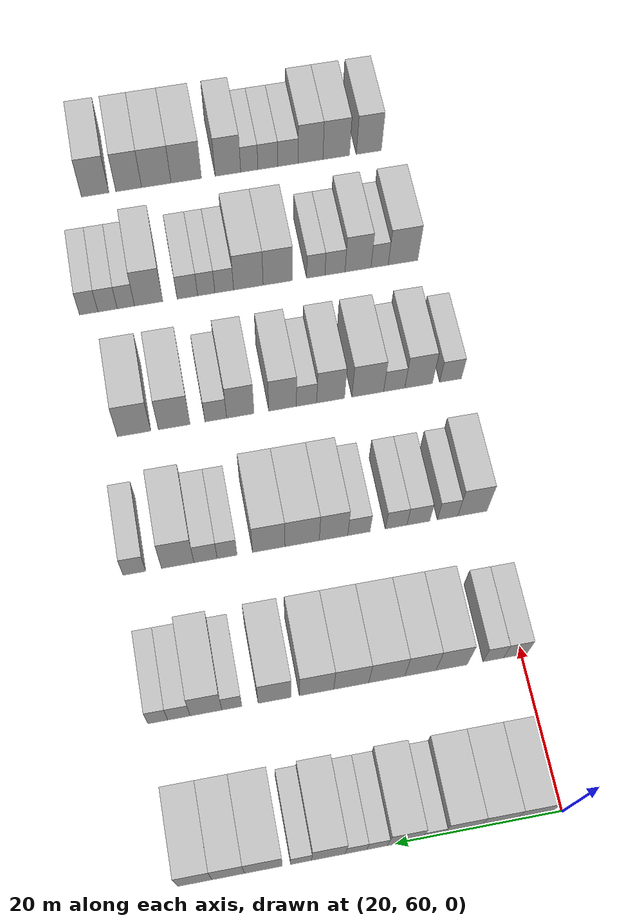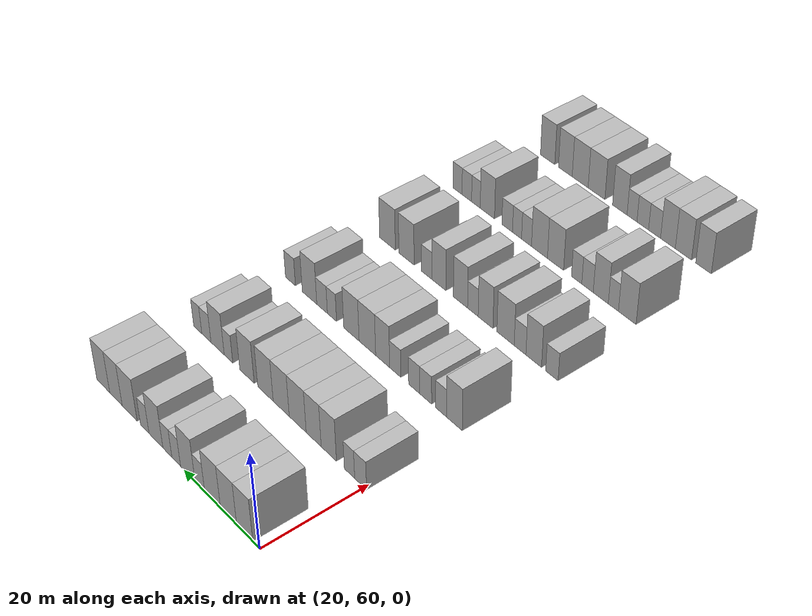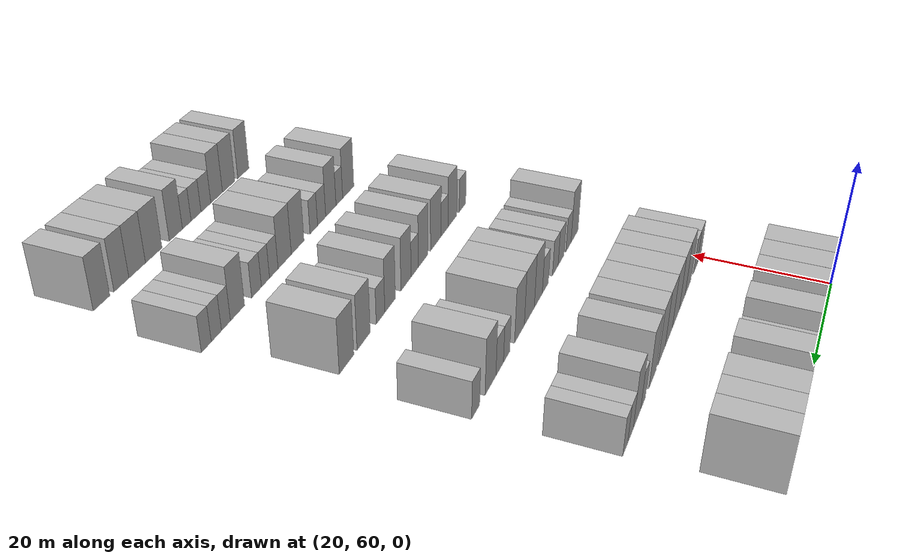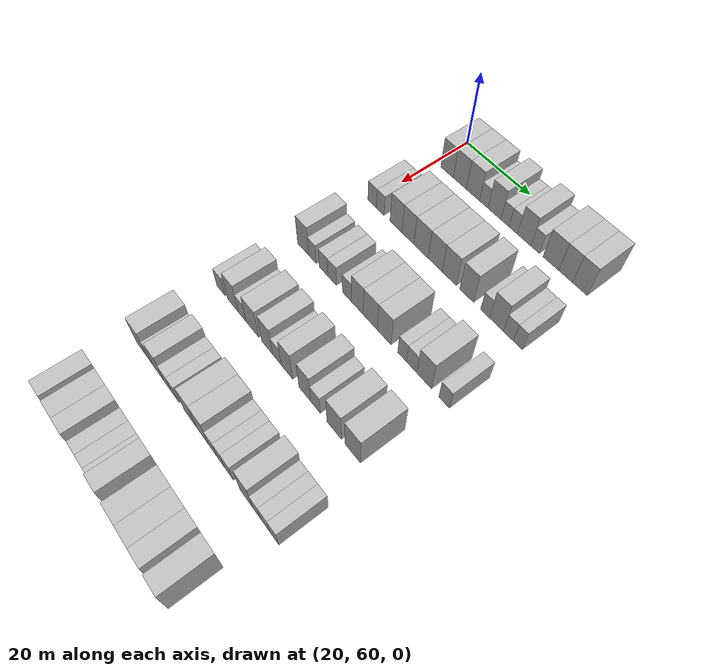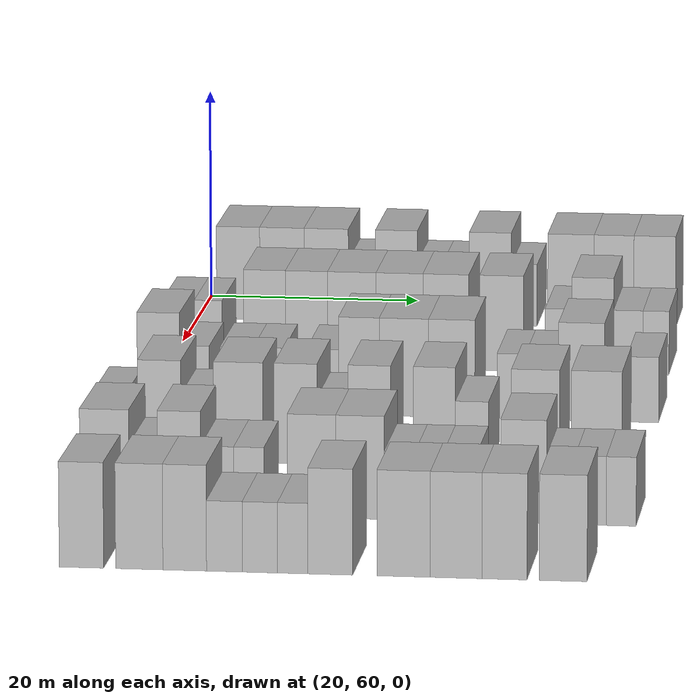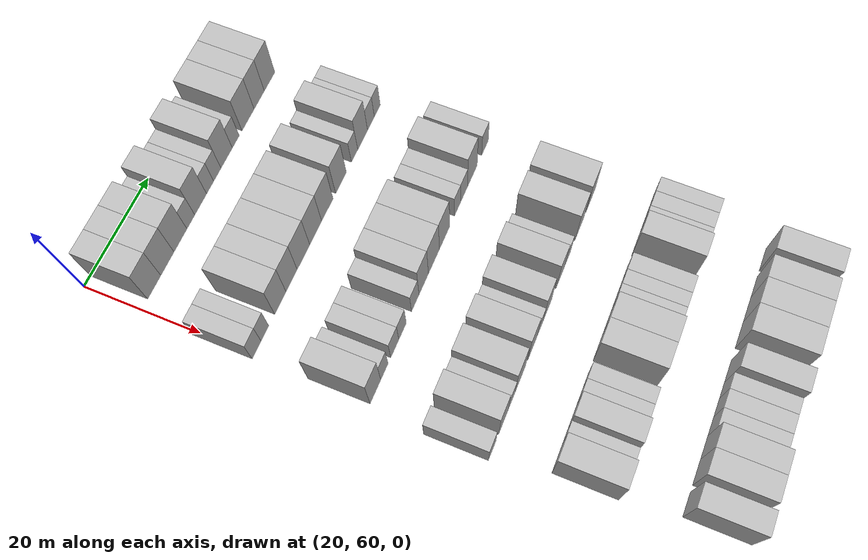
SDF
<sdf version="1.6">
 <world name="default">
  <model name="building_106">
   <static>1</static>
   <pose>25.0000 63.9038 0 0.000000 0.000000 0.000000</pose>
   <link name="link">
    <pose>0 0 4.50 0 0 0</pose>
    <collision name="collision"><geometry><box><size>10.0000 4.1466 9.0000</size></box></geometry></collision>
    <visual name="visual">
     <cast_shadows>0</cast_shadows>
     <geometry><box><size>10.0000 4.1466 9.0000</size></box></geometry>
     <material>
      <script>
       <uri>model://HANNAS_wall/materials/scripts</uri>
       <uri>model://HANNAS_wall/materials/textures</uri>
       <name>vrc/HANNAS_wall</name>
      </script>
     </material>
    </visual>
   </link>
  </model>
  <model name="building_107">
   <static>1</static>
   <pose>25.0000 68.0973 0 0.000000 0.000000 0.000000</pose>
   <link name="link">
    <pose>0 0 4.50 0 0 0</pose>
    <collision name="collision"><geometry><box><size>10.0000 4.2405 9.0000</size></box></geometry></collision>
    <visual name="visual">
     <cast_shadows>0</cast_shadows>
     <geometry><box><size>10.0000 4.2405 9.0000</size></box></geometry>
     <material>
      <script>
       <uri>model://HANNAS_wall/materials/scripts</uri>
       <uri>model://HANNAS_wall/materials/textures</uri>
       <name>vrc/HANNAS_wall</name>
      </script>
     </material>
    </visual>
   </link>
  </model>
  <model name="building_108">
   <static>1</static>
   <pose>25.0000 72.3315 0 0.000000 0.000000 0.000000</pose>
   <link name="link">
    <pose>0 0 4.50 0 0 0</pose>
    <collision name="collision"><geometry><box><size>10.0000 4.2278 9.0000</size></box></geometry></collision>
    <visual name="visual">
     <cast_shadows>0</cast_shadows>
     <geometry><box><size>10.0000 4.2278 9.0000</size></box></geometry>
     <material>
      <script>
       <uri>model://HANNAS_wall/materials/scripts</uri>
       <uri>model://HANNAS_wall/materials/textures</uri>
       <name>vrc/HANNAS_wall</name>
      </script>
     </material>
    </visual>
   </link>
  </model>
  <model name="building_109">
   <static>1</static>
   <pose>25.0000 75.7464 0 0.000000 0.000000 0.000000</pose>
   <link name="link">
    <pose>0 0 3.00 0 0 0</pose>
    <collision name="collision"><geometry><box><size>10.0000 2.6019 6.0000</size></box></geometry></collision>
    <visual name="visual">
     <cast_shadows>0</cast_shadows>
     <geometry><box><size>10.0000 2.6019 6.0000</size></box></geometry>
     <material>
      <script>
       <uri>model://HANNAS_wall/materials/scripts</uri>
       <uri>model://HANNAS_wall/materials/textures</uri>
       <name>vrc/HANNAS_wall</name>
      </script>
     </material>
    </visual>
   </link>
  </model>
  <model name="building_110">
   <static>1</static>
   <pose>25.0000 79.0445 0 0.000000 0.000000 0.000000</pose>
   <link name="link">
    <pose>0 0 4.50 0 0 0</pose>
    <collision name="collision"><geometry><box><size>10.0000 3.9943 9.0000</size></box></geometry></collision>
    <visual name="visual">
     <cast_shadows>0</cast_shadows>
     <geometry><box><size>10.0000 3.9943 9.0000</size></box></geometry>
     <material>
      <script>
       <uri>model://HANNAS_wall/materials/scripts</uri>
       <uri>model://HANNAS_wall/materials/textures</uri>
       <name>vrc/HANNAS_wall</name>
      </script>
     </material>
    </visual>
   </link>
  </model>
  <model name="building_111">
   <static>1</static>
   <pose>25.0000 82.2588 0 0.000000 0.000000 0.000000</pose>
   <link name="link">
    <pose>0 0 3.00 0 0 0</pose>
    <collision name="collision"><geometry><box><size>10.0000 2.4343 6.0000</size></box></geometry></collision>
    <visual name="visual">
     <cast_shadows>0</cast_shadows>
     <geometry><box><size>10.0000 2.4343 6.0000</size></box></geometry>
     <material>
      <script>
       <uri>model://HANNAS_wall/materials/scripts</uri>
       <uri>model://HANNAS_wall/materials/textures</uri>
       <name>vrc/HANNAS_wall</name>
      </script>
     </material>
    </visual>
   </link>
  </model>
  <model name="building_112">
   <static>1</static>
   <pose>25.0000 84.7339 0 0.000000 0.000000 0.000000</pose>
   <link name="link">
    <pose>0 0 3.00 0 0 0</pose>
    <collision name="collision"><geometry><box><size>10.0000 2.5159 6.0000</size></box></geometry></collision>
    <visual name="visual">
     <cast_shadows>0</cast_shadows>
     <geometry><box><size>10.0000 2.5159 6.0000</size></box></geometry>
     <material>
      <script>
       <uri>model://HANNAS_wall/materials/scripts</uri>
       <uri>model://HANNAS_wall/materials/textures</uri>
       <name>vrc/HANNAS_wall</name>
      </script>
     </material>
    </visual>
   </link>
  </model>
  <model name="building_113">
   <static>1</static>
   <pose>25.0000 87.9818 0 0.000000 0.000000 0.000000</pose>
   <link name="link">
    <pose>0 0 4.50 0 0 0</pose>
    <collision name="collision"><geometry><box><size>10.0000 3.9801 9.0000</size></box></geometry></collision>
    <visual name="visual">
     <cast_shadows>0</cast_shadows>
     <geometry><box><size>10.0000 3.9801 9.0000</size></box></geometry>
     <material>
      <script>
       <uri>model://HANNAS_wall/materials/scripts</uri>
       <uri>model://HANNAS_wall/materials/textures</uri>
       <name>vrc/HANNAS_wall</name>
      </script>
     </material>
    </visual>
   </link>
  </model>
  <model name="building_114">
   <static>1</static>
   <pose>25.0000 91.2008 0 0.000000 0.000000 0.000000</pose>
   <link name="link">
    <pose>0 0 3.00 0 0 0</pose>
    <collision name="collision"><geometry><box><size>10.0000 2.4577 6.0000</size></box></geometry></collision>
    <visual name="visual">
     <cast_shadows>0</cast_shadows>
     <geometry><box><size>10.0000 2.4577 6.0000</size></box></geometry>
     <material>
      <script>
       <uri>model://HANNAS_wall/materials/scripts</uri>
       <uri>model://HANNAS_wall/materials/textures</uri>
       <name>vrc/HANNAS_wall</name>
      </script>
     </material>
    </visual>
   </link>
  </model>
  <model name="building_115">
   <static>1</static>
   <pose>25.0000 95.6317 0 0.000000 0.000000 0.000000</pose>
   <link name="link">
    <pose>0 0 4.50 0 0 0</pose>
    <collision name="collision"><geometry><box><size>10.0000 4.4041 9.0000</size></box></geometry></collision>
    <visual name="visual">
     <cast_shadows>0</cast_shadows>
     <geometry><box><size>10.0000 4.4041 9.0000</size></box></geometry>
     <material>
      <script>
       <uri>model://HANNAS_wall/materials/scripts</uri>
       <uri>model://HANNAS_wall/materials/textures</uri>
       <name>vrc/HANNAS_wall</name>
      </script>
     </material>
    </visual>
   </link>
  </model>
  <model name="building_116">
   <static>1</static>
   <pose>25.0000 99.7130 0 0.000000 0.000000 0.000000</pose>
   <link name="link">
    <pose>0 0 4.50 0 0 0</pose>
    <collision name="collision"><geometry><box><size>10.0000 3.7586 9.0000</size></box></geometry></collision>
    <visual name="visual">
     <cast_shadows>0</cast_shadows>
     <geometry><box><size>10.0000 3.7586 9.0000</size></box></geometry>
     <material>
      <script>
       <uri>model://HANNAS_wall/materials/scripts</uri>
       <uri>model://HANNAS_wall/materials/textures</uri>
       <name>vrc/HANNAS_wall</name>
      </script>
     </material>
    </visual>
   </link>
  </model>
  <model name="building_117">
   <static>1</static>
   <pose>25.0000 103.5702 0 0.000000 0.000000 0.000000</pose>
   <link name="link">
    <pose>0 0 4.50 0 0 0</pose>
    <collision name="collision"><geometry><box><size>10.0000 3.9557 9.0000</size></box></geometry></collision>
    <visual name="visual">
     <cast_shadows>0</cast_shadows>
     <geometry><box><size>10.0000 3.9557 9.0000</size></box></geometry>
     <material>
      <script>
       <uri>model://HANNAS_wall/materials/scripts</uri>
       <uri>model://HANNAS_wall/materials/textures</uri>
       <name>vrc/HANNAS_wall</name>
      </script>
     </material>
    </visual>
   </link>
  </model>
  <model name="building_271">
   <static>1</static>
   <pose>44.0000 60.8324 0 0.000000 0.000000 0.000000</pose>
   <link name="link">
    <pose>0 0 3.00 0 0 0</pose>
    <collision name="collision"><geometry><box><size>10.0000 2.9647 6.0000</size></box></geometry></collision>
    <visual name="visual">
     <cast_shadows>0</cast_shadows>
     <geometry><box><size>10.0000 2.9647 6.0000</size></box></geometry>
     <material>
      <script>
       <uri>model://HANNAS_wall/materials/scripts</uri>
       <uri>model://HANNAS_wall/materials/textures</uri>
       <name>vrc/HANNAS_wall</name>
      </script>
     </material>
    </visual>
   </link>
  </model>
  <model name="building_272">
   <static>1</static>
   <pose>44.0000 63.6088 0 0.000000 0.000000 0.000000</pose>
   <link name="link">
    <pose>0 0 3.00 0 0 0</pose>
    <collision name="collision"><geometry><box><size>10.0000 2.5880 6.0000</size></box></geometry></collision>
    <visual name="visual">
     <cast_shadows>0</cast_shadows>
     <geometry><box><size>10.0000 2.5880 6.0000</size></box></geometry>
     <material>
      <script>
       <uri>model://HANNAS_wall/materials/scripts</uri>
       <uri>model://HANNAS_wall/materials/textures</uri>
       <name>vrc/HANNAS_wall</name>
      </script>
     </material>
    </visual>
   </link>
  </model>
  <model name="building_273">
   <static>1</static>
   <pose>44.0000 68.8631 0 0.000000 0.000000 0.000000</pose>
   <link name="link">
    <pose>0 0 4.50 0 0 0</pose>
    <collision name="collision"><geometry><box><size>10.0000 3.9206 9.0000</size></box></geometry></collision>
    <visual name="visual">
     <cast_shadows>0</cast_shadows>
     <geometry><box><size>10.0000 3.9206 9.0000</size></box></geometry>
     <material>
      <script>
       <uri>model://HANNAS_wall/materials/scripts</uri>
       <uri>model://HANNAS_wall/materials/textures</uri>
       <name>vrc/HANNAS_wall</name>
      </script>
     </material>
    </visual>
   </link>
  </model>
  <model name="building_274">
   <static>1</static>
   <pose>44.0000 72.7840 0 0.000000 0.000000 0.000000</pose>
   <link name="link">
    <pose>0 0 4.50 0 0 0</pose>
    <collision name="collision"><geometry><box><size>10.0000 3.9212 9.0000</size></box></geometry></collision>
    <visual name="visual">
     <cast_shadows>0</cast_shadows>
     <geometry><box><size>10.0000 3.9212 9.0000</size></box></geometry>
     <material>
      <script>
       <uri>model://HANNAS_wall/materials/scripts</uri>
       <uri>model://HANNAS_wall/materials/textures</uri>
       <name>vrc/HANNAS_wall</name>
      </script>
     </material>
    </visual>
   </link>
  </model>
  <model name="building_275">
   <static>1</static>
   <pose>44.0000 76.9943 0 0.000000 0.000000 0.000000</pose>
   <link name="link">
    <pose>0 0 4.50 0 0 0</pose>
    <collision name="collision"><geometry><box><size>10.0000 4.4993 9.0000</size></box></geometry></collision>
    <visual name="visual">
     <cast_shadows>0</cast_shadows>
     <geometry><box><size>10.0000 4.4993 9.0000</size></box></geometry>
     <material>
      <script>
       <uri>model://HANNAS_wall/materials/scripts</uri>
       <uri>model://HANNAS_wall/materials/textures</uri>
       <name>vrc/HANNAS_wall</name>
      </script>
     </material>
    </visual>
   </link>
  </model>
  <model name="building_276">
   <static>1</static>
   <pose>44.0000 81.4187 0 0.000000 0.000000 0.000000</pose>
   <link name="link">
    <pose>0 0 4.50 0 0 0</pose>
    <collision name="collision"><geometry><box><size>10.0000 4.3495 9.0000</size></box></geometry></collision>
    <visual name="visual">
     <cast_shadows>0</cast_shadows>
     <geometry><box><size>10.0000 4.3495 9.0000</size></box></geometry>
     <material>
      <script>
       <uri>model://HANNAS_wall/materials/scripts</uri>
       <uri>model://HANNAS_wall/materials/textures</uri>
       <name>vrc/HANNAS_wall</name>
      </script>
     </material>
    </visual>
   </link>
  </model>
  <model name="building_277">
   <static>1</static>
   <pose>44.0000 85.7182 0 0.000000 0.000000 0.000000</pose>
   <link name="link">
    <pose>0 0 4.50 0 0 0</pose>
    <collision name="collision"><geometry><box><size>10.0000 4.2495 9.0000</size></box></geometry></collision>
    <visual name="visual">
     <cast_shadows>0</cast_shadows>
     <geometry><box><size>10.0000 4.2495 9.0000</size></box></geometry>
     <material>
      <script>
       <uri>model://HANNAS_wall/materials/scripts</uri>
       <uri>model://HANNAS_wall/materials/textures</uri>
       <name>vrc/HANNAS_wall</name>
      </script>
     </material>
    </visual>
   </link>
  </model>
  <model name="building_278">
   <static>1</static>
   <pose>44.0000 90.8775 0 0.000000 0.000000 0.000000</pose>
   <link name="link">
    <pose>0 0 4.50 0 0 0</pose>
    <collision name="collision"><geometry><box><size>10.0000 4.0691 9.0000</size></box></geometry></collision>
    <visual name="visual">
     <cast_shadows>0</cast_shadows>
     <geometry><box><size>10.0000 4.0691 9.0000</size></box></geometry>
     <material>
      <script>
       <uri>model://HANNAS_wall/materials/scripts</uri>
       <uri>model://HANNAS_wall/materials/textures</uri>
       <name>vrc/HANNAS_wall</name>
      </script>
     </material>
    </visual>
   </link>
  </model>
  <model name="building_279">
   <static>1</static>
   <pose>44.0000 96.1391 0 0.000000 0.000000 0.000000</pose>
   <link name="link">
    <pose>0 0 3.00 0 0 0</pose>
    <collision name="collision"><geometry><box><size>10.0000 2.4541 6.0000</size></box></geometry></collision>
    <visual name="visual">
     <cast_shadows>0</cast_shadows>
     <geometry><box><size>10.0000 2.4541 6.0000</size></box></geometry>
     <material>
      <script>
       <uri>model://HANNAS_wall/materials/scripts</uri>
       <uri>model://HANNAS_wall/materials/textures</uri>
       <name>vrc/HANNAS_wall</name>
      </script>
     </material>
    </visual>
   </link>
  </model>
  <model name="building_280">
   <static>1</static>
   <pose>44.0000 99.3023 0 0.000000 0.000000 0.000000</pose>
   <link name="link">
    <pose>0 0 4.50 0 0 0</pose>
    <collision name="collision"><geometry><box><size>10.0000 3.8723 9.0000</size></box></geometry></collision>
    <visual name="visual">
     <cast_shadows>0</cast_shadows>
     <geometry><box><size>10.0000 3.8723 9.0000</size></box></geometry>
     <material>
      <script>
       <uri>model://HANNAS_wall/materials/scripts</uri>
       <uri>model://HANNAS_wall/materials/textures</uri>
       <name>vrc/HANNAS_wall</name>
      </script>
     </material>
    </visual>
   </link>
  </model>
  <model name="building_281">
   <static>1</static>
   <pose>44.0000 102.5979 0 0.000000 0.000000 0.000000</pose>
   <link name="link">
    <pose>0 0 3.00 0 0 0</pose>
    <collision name="collision"><geometry><box><size>10.0000 2.7188 6.0000</size></box></geometry></collision>
    <visual name="visual">
     <cast_shadows>0</cast_shadows>
     <geometry><box><size>10.0000 2.7188 6.0000</size></box></geometry>
     <material>
      <script>
       <uri>model://HANNAS_wall/materials/scripts</uri>
       <uri>model://HANNAS_wall/materials/textures</uri>
       <name>vrc/HANNAS_wall</name>
      </script>
     </material>
    </visual>
   </link>
  </model>
  <model name="building_282">
   <static>1</static>
   <pose>44.0000 105.1617 0 0.000000 0.000000 0.000000</pose>
   <link name="link">
    <pose>0 0 3.00 0 0 0</pose>
    <collision name="collision"><geometry><box><size>10.0000 2.4087 6.0000</size></box></geometry></collision>
    <visual name="visual">
     <cast_shadows>0</cast_shadows>
     <geometry><box><size>10.0000 2.4087 6.0000</size></box></geometry>
     <material>
      <script>
       <uri>model://HANNAS_wall/materials/scripts</uri>
       <uri>model://HANNAS_wall/materials/textures</uri>
       <name>vrc/HANNAS_wall</name>
      </script>
     </material>
    </visual>
   </link>
  </model>
  <model name="building_451">
   <static>1</static>
   <pose>63.0000 61.6521 0 0.000000 0.000000 0.000000</pose>
   <link name="link">
    <pose>0 0 4.50 0 0 0</pose>
    <collision name="collision"><geometry><box><size>10.0000 3.8579 9.0000</size></box></geometry></collision>
    <visual name="visual">
     <cast_shadows>0</cast_shadows>
     <geometry><box><size>10.0000 3.8579 9.0000</size></box></geometry>
     <material>
      <script>
       <uri>model://HANNAS_wall/materials/scripts</uri>
       <uri>model://HANNAS_wall/materials/textures</uri>
       <name>vrc/HANNAS_wall</name>
      </script>
     </material>
    </visual>
   </link>
  </model>
  <model name="building_452">
   <static>1</static>
   <pose>63.0000 64.9210 0 0.000000 0.000000 0.000000</pose>
   <link name="link">
    <pose>0 0 3.00 0 0 0</pose>
    <collision name="collision"><geometry><box><size>10.0000 2.6800 6.0000</size></box></geometry></collision>
    <visual name="visual">
     <cast_shadows>0</cast_shadows>
     <geometry><box><size>10.0000 2.6800 6.0000</size></box></geometry>
     <material>
      <script>
       <uri>model://HANNAS_wall/materials/scripts</uri>
       <uri>model://HANNAS_wall/materials/textures</uri>
       <name>vrc/HANNAS_wall</name>
      </script>
     </material>
    </visual>
   </link>
  </model>
  <model name="building_453">
   <static>1</static>
   <pose>63.0000 68.7595 0 0.000000 0.000000 0.000000</pose>
   <link name="link">
    <pose>0 0 3.00 0 0 0</pose>
    <collision name="collision"><geometry><box><size>10.0000 2.9969 6.0000</size></box></geometry></collision>
    <visual name="visual">
     <cast_shadows>0</cast_shadows>
     <geometry><box><size>10.0000 2.9969 6.0000</size></box></geometry>
     <material>
      <script>
       <uri>model://HANNAS_wall/materials/scripts</uri>
       <uri>model://HANNAS_wall/materials/textures</uri>
       <name>vrc/HANNAS_wall</name>
      </script>
     </material>
    </visual>
   </link>
  </model>
  <model name="building_454">
   <static>1</static>
   <pose>63.0000 71.6712 0 0.000000 0.000000 0.000000</pose>
   <link name="link">
    <pose>0 0 3.00 0 0 0</pose>
    <collision name="collision"><geometry><box><size>10.0000 2.8265 6.0000</size></box></geometry></collision>
    <visual name="visual">
     <cast_shadows>0</cast_shadows>
     <geometry><box><size>10.0000 2.8265 6.0000</size></box></geometry>
     <material>
      <script>
       <uri>model://HANNAS_wall/materials/scripts</uri>
       <uri>model://HANNAS_wall/materials/textures</uri>
       <name>vrc/HANNAS_wall</name>
      </script>
     </material>
    </visual>
   </link>
  </model>
  <model name="building_455">
   <static>1</static>
   <pose>63.0000 76.5376 0 0.000000 0.000000 0.000000</pose>
   <link name="link">
    <pose>0 0 3.00 0 0 0</pose>
    <collision name="collision"><geometry><box><size>10.0000 2.9063 6.0000</size></box></geometry></collision>
    <visual name="visual">
     <cast_shadows>0</cast_shadows>
     <geometry><box><size>10.0000 2.9063 6.0000</size></box></geometry>
     <material>
      <script>
       <uri>model://HANNAS_wall/materials/scripts</uri>
       <uri>model://HANNAS_wall/materials/textures</uri>
       <name>vrc/HANNAS_wall</name>
      </script>
     </material>
    </visual>
   </link>
  </model>
  <model name="building_456">
   <static>1</static>
   <pose>63.0000 79.8390 0 0.000000 0.000000 0.000000</pose>
   <link name="link">
    <pose>0 0 4.50 0 0 0</pose>
    <collision name="collision"><geometry><box><size>10.0000 3.6966 9.0000</size></box></geometry></collision>
    <visual name="visual">
     <cast_shadows>0</cast_shadows>
     <geometry><box><size>10.0000 3.6966 9.0000</size></box></geometry>
     <material>
      <script>
       <uri>model://HANNAS_wall/materials/scripts</uri>
       <uri>model://HANNAS_wall/materials/textures</uri>
       <name>vrc/HANNAS_wall</name>
      </script>
     </material>
    </visual>
   </link>
  </model>
  <model name="building_457">
   <static>1</static>
   <pose>63.0000 83.9085 0 0.000000 0.000000 0.000000</pose>
   <link name="link">
    <pose>0 0 4.50 0 0 0</pose>
    <collision name="collision"><geometry><box><size>10.0000 4.4424 9.0000</size></box></geometry></collision>
    <visual name="visual">
     <cast_shadows>0</cast_shadows>
     <geometry><box><size>10.0000 4.4424 9.0000</size></box></geometry>
     <material>
      <script>
       <uri>model://HANNAS_wall/materials/scripts</uri>
       <uri>model://HANNAS_wall/materials/textures</uri>
       <name>vrc/HANNAS_wall</name>
      </script>
     </material>
    </visual>
   </link>
  </model>
  <model name="building_458">
   <static>1</static>
   <pose>63.0000 88.2205 0 0.000000 0.000000 0.000000</pose>
   <link name="link">
    <pose>0 0 4.50 0 0 0</pose>
    <collision name="collision"><geometry><box><size>10.0000 4.1816 9.0000</size></box></geometry></collision>
    <visual name="visual">
     <cast_shadows>0</cast_shadows>
     <geometry><box><size>10.0000 4.1816 9.0000</size></box></geometry>
     <material>
      <script>
       <uri>model://HANNAS_wall/materials/scripts</uri>
       <uri>model://HANNAS_wall/materials/textures</uri>
       <name>vrc/HANNAS_wall</name>
      </script>
     </material>
    </visual>
   </link>
  </model>
  <model name="building_459">
   <static>1</static>
   <pose>63.0000 93.5876 0 0.000000 0.000000 0.000000</pose>
   <link name="link">
    <pose>0 0 3.00 0 0 0</pose>
    <collision name="collision"><geometry><box><size>10.0000 2.5525 6.0000</size></box></geometry></collision>
    <visual name="visual">
     <cast_shadows>0</cast_shadows>
     <geometry><box><size>10.0000 2.5525 6.0000</size></box></geometry>
     <material>
      <script>
       <uri>model://HANNAS_wall/materials/scripts</uri>
       <uri>model://HANNAS_wall/materials/textures</uri>
       <name>vrc/HANNAS_wall</name>
      </script>
     </material>
    </visual>
   </link>
  </model>
  <model name="building_460">
   <static>1</static>
   <pose>63.0000 96.3551 0 0.000000 0.000000 0.000000</pose>
   <link name="link">
    <pose>0 0 3.00 0 0 0</pose>
    <collision name="collision"><geometry><box><size>10.0000 2.9826 6.0000</size></box></geometry></collision>
    <visual name="visual">
     <cast_shadows>0</cast_shadows>
     <geometry><box><size>10.0000 2.9826 6.0000</size></box></geometry>
     <material>
      <script>
       <uri>model://HANNAS_wall/materials/scripts</uri>
       <uri>model://HANNAS_wall/materials/textures</uri>
       <name>vrc/HANNAS_wall</name>
      </script>
     </material>
    </visual>
   </link>
  </model>
  <model name="building_461">
   <static>1</static>
   <pose>63.0000 99.9138 0 0.000000 0.000000 0.000000</pose>
   <link name="link">
    <pose>0 0 4.50 0 0 0</pose>
    <collision name="collision"><geometry><box><size>10.0000 4.1348 9.0000</size></box></geometry></collision>
    <visual name="visual">
     <cast_shadows>0</cast_shadows>
     <geometry><box><size>10.0000 4.1348 9.0000</size></box></geometry>
     <material>
      <script>
       <uri>model://HANNAS_wall/materials/scripts</uri>
       <uri>model://HANNAS_wall/materials/textures</uri>
       <name>vrc/HANNAS_wall</name>
      </script>
     </material>
    </visual>
   </link>
  </model>
  <model name="building_462">
   <static>1</static>
   <pose>63.0000 105.4234 0 0.000000 0.000000 0.000000</pose>
   <link name="link">
    <pose>0 0 3.00 0 0 0</pose>
    <collision name="collision"><geometry><box><size>10.0000 2.8844 6.0000</size></box></geometry></collision>
    <visual name="visual">
     <cast_shadows>0</cast_shadows>
     <geometry><box><size>10.0000 2.8844 6.0000</size></box></geometry>
     <material>
      <script>
       <uri>model://HANNAS_wall/materials/scripts</uri>
       <uri>model://HANNAS_wall/materials/textures</uri>
       <name>vrc/HANNAS_wall</name>
      </script>
     </material>
    </visual>
   </link>
  </model>
  <model name="building_602">
   <static>1</static>
   <pose>82.0000 60.0357 0 0.000000 0.000000 0.000000</pose>
   <link name="link">
    <pose>0 0 3.00 0 0 0</pose>
    <collision name="collision"><geometry><box><size>10.0000 2.9883 6.0000</size></box></geometry></collision>
    <visual name="visual">
     <cast_shadows>0</cast_shadows>
     <geometry><box><size>10.0000 2.9883 6.0000</size></box></geometry>
     <material>
      <script>
       <uri>model://HANNAS_wall/materials/scripts</uri>
       <uri>model://HANNAS_wall/materials/textures</uri>
       <name>vrc/HANNAS_wall</name>
      </script>
     </material>
    </visual>
   </link>
  </model>
  <model name="building_603">
   <static>1</static>
   <pose>82.0000 64.4304 0 0.000000 0.000000 0.000000</pose>
   <link name="link">
    <pose>0 0 4.50 0 0 0</pose>
    <collision name="collision"><geometry><box><size>10.0000 3.8011 9.0000</size></box></geometry></collision>
    <visual name="visual">
     <cast_shadows>0</cast_shadows>
     <geometry><box><size>10.0000 3.8011 9.0000</size></box></geometry>
     <material>
      <script>
       <uri>model://HANNAS_wall/materials/scripts</uri>
       <uri>model://HANNAS_wall/materials/textures</uri>
       <name>vrc/HANNAS_wall</name>
      </script>
     </material>
    </visual>
   </link>
  </model>
  <model name="building_604">
   <static>1</static>
   <pose>82.0000 67.7815 0 0.000000 0.000000 0.000000</pose>
   <link name="link">
    <pose>0 0 3.00 0 0 0</pose>
    <collision name="collision"><geometry><box><size>10.0000 2.9009 6.0000</size></box></geometry></collision>
    <visual name="visual">
     <cast_shadows>0</cast_shadows>
     <geometry><box><size>10.0000 2.9009 6.0000</size></box></geometry>
     <material>
      <script>
       <uri>model://HANNAS_wall/materials/scripts</uri>
       <uri>model://HANNAS_wall/materials/textures</uri>
       <name>vrc/HANNAS_wall</name>
      </script>
     </material>
    </visual>
   </link>
  </model>
  <model name="building_605">
   <static>1</static>
   <pose>82.0000 71.3990 0 0.000000 0.000000 0.000000</pose>
   <link name="link">
    <pose>0 0 4.50 0 0 0</pose>
    <collision name="collision"><geometry><box><size>10.0000 4.3343 9.0000</size></box></geometry></collision>
    <visual name="visual">
     <cast_shadows>0</cast_shadows>
     <geometry><box><size>10.0000 4.3343 9.0000</size></box></geometry>
     <material>
      <script>
       <uri>model://HANNAS_wall/materials/scripts</uri>
       <uri>model://HANNAS_wall/materials/textures</uri>
       <name>vrc/HANNAS_wall</name>
      </script>
     </material>
    </visual>
   </link>
  </model>
  <model name="building_606">
   <static>1</static>
   <pose>82.0000 76.4575 0 0.000000 0.000000 0.000000</pose>
   <link name="link">
    <pose>0 0 4.50 0 0 0</pose>
    <collision name="collision"><geometry><box><size>10.0000 3.7827 9.0000</size></box></geometry></collision>
    <visual name="visual">
     <cast_shadows>0</cast_shadows>
     <geometry><box><size>10.0000 3.7827 9.0000</size></box></geometry>
     <material>
      <script>
       <uri>model://HANNAS_wall/materials/scripts</uri>
       <uri>model://HANNAS_wall/materials/textures</uri>
       <name>vrc/HANNAS_wall</name>
      </script>
     </material>
    </visual>
   </link>
  </model>
  <model name="building_607">
   <static>1</static>
   <pose>82.0000 79.7232 0 0.000000 0.000000 0.000000</pose>
   <link name="link">
    <pose>0 0 3.00 0 0 0</pose>
    <collision name="collision"><geometry><box><size>10.0000 2.7486 6.0000</size></box></geometry></collision>
    <visual name="visual">
     <cast_shadows>0</cast_shadows>
     <geometry><box><size>10.0000 2.7486 6.0000</size></box></geometry>
     <material>
      <script>
       <uri>model://HANNAS_wall/materials/scripts</uri>
       <uri>model://HANNAS_wall/materials/textures</uri>
       <name>vrc/HANNAS_wall</name>
      </script>
     </material>
    </visual>
   </link>
  </model>
  <model name="building_608">
   <static>1</static>
   <pose>82.0000 82.9624 0 0.000000 0.000000 0.000000</pose>
   <link name="link">
    <pose>0 0 4.50 0 0 0</pose>
    <collision name="collision"><geometry><box><size>10.0000 3.7298 9.0000</size></box></geometry></collision>
    <visual name="visual">
     <cast_shadows>0</cast_shadows>
     <geometry><box><size>10.0000 3.7298 9.0000</size></box></geometry>
     <material>
      <script>
       <uri>model://HANNAS_wall/materials/scripts</uri>
       <uri>model://HANNAS_wall/materials/textures</uri>
       <name>vrc/HANNAS_wall</name>
      </script>
     </material>
    </visual>
   </link>
  </model>
  <model name="building_609">
   <static>1</static>
   <pose>82.0000 88.6701 0 0.000000 0.000000 0.000000</pose>
   <link name="link">
    <pose>0 0 4.50 0 0 0</pose>
    <collision name="collision"><geometry><box><size>10.0000 3.6857 9.0000</size></box></geometry></collision>
    <visual name="visual">
     <cast_shadows>0</cast_shadows>
     <geometry><box><size>10.0000 3.6857 9.0000</size></box></geometry>
     <material>
      <script>
       <uri>model://HANNAS_wall/materials/scripts</uri>
       <uri>model://HANNAS_wall/materials/textures</uri>
       <name>vrc/HANNAS_wall</name>
      </script>
     </material>
    </visual>
   </link>
  </model>
  <model name="building_610">
   <static>1</static>
   <pose>82.0000 91.9638 0 0.000000 0.000000 0.000000</pose>
   <link name="link">
    <pose>0 0 3.00 0 0 0</pose>
    <collision name="collision"><geometry><box><size>10.0000 2.9018 6.0000</size></box></geometry></collision>
    <visual name="visual">
     <cast_shadows>0</cast_shadows>
     <geometry><box><size>10.0000 2.9018 6.0000</size></box></geometry>
     <material>
      <script>
       <uri>model://HANNAS_wall/materials/scripts</uri>
       <uri>model://HANNAS_wall/materials/textures</uri>
       <name>vrc/HANNAS_wall</name>
      </script>
     </material>
    </visual>
   </link>
  </model>
  <model name="building_611">
   <static>1</static>
   <pose>82.0000 97.5296 0 0.000000 0.000000 0.000000</pose>
   <link name="link">
    <pose>0 0 4.50 0 0 0</pose>
    <collision name="collision"><geometry><box><size>10.0000 4.2297 9.0000</size></box></geometry></collision>
    <visual name="visual">
     <cast_shadows>0</cast_shadows>
     <geometry><box><size>10.0000 4.2297 9.0000</size></box></geometry>
     <material>
      <script>
       <uri>model://HANNAS_wall/materials/scripts</uri>
       <uri>model://HANNAS_wall/materials/textures</uri>
       <name>vrc/HANNAS_wall</name>
      </script>
     </material>
    </visual>
   </link>
  </model>
  <model name="building_612">
   <static>1</static>
   <pose>82.0000 102.8694 0 0.000000 0.000000 0.000000</pose>
   <link name="link">
    <pose>0 0 4.50 0 0 0</pose>
    <collision name="collision"><geometry><box><size>10.0000 4.4499 9.0000</size></box></geometry></collision>
    <visual name="visual">
     <cast_shadows>0</cast_shadows>
     <geometry><box><size>10.0000 4.4499 9.0000</size></box></geometry>
     <material>
      <script>
       <uri>model://HANNAS_wall/materials/scripts</uri>
       <uri>model://HANNAS_wall/materials/textures</uri>
       <name>vrc/HANNAS_wall</name>
      </script>
     </material>
    </visual>
   </link>
  </model>
  <model name="building_765">
   <static>1</static>
   <pose>101.0000 62.3878 0 0.000000 0.000000 0.000000</pose>
   <link name="link">
    <pose>0 0 4.50 0 0 0</pose>
    <collision name="collision"><geometry><box><size>10.0000 4.2279 9.0000</size></box></geometry></collision>
    <visual name="visual">
     <cast_shadows>0</cast_shadows>
     <geometry><box><size>10.0000 4.2279 9.0000</size></box></geometry>
     <material>
      <script>
       <uri>model://HANNAS_wall/materials/scripts</uri>
       <uri>model://HANNAS_wall/materials/textures</uri>
       <name>vrc/HANNAS_wall</name>
      </script>
     </material>
    </visual>
   </link>
  </model>
  <model name="building_766">
   <static>1</static>
   <pose>101.0000 65.7310 0 0.000000 0.000000 0.000000</pose>
   <link name="link">
    <pose>0 0 3.00 0 0 0</pose>
    <collision name="collision"><geometry><box><size>10.0000 2.4583 6.0000</size></box></geometry></collision>
    <visual name="visual">
     <cast_shadows>0</cast_shadows>
     <geometry><box><size>10.0000 2.4583 6.0000</size></box></geometry>
     <material>
      <script>
       <uri>model://HANNAS_wall/materials/scripts</uri>
       <uri>model://HANNAS_wall/materials/textures</uri>
       <name>vrc/HANNAS_wall</name>
      </script>
     </material>
    </visual>
   </link>
  </model>
  <model name="building_767">
   <static>1</static>
   <pose>101.0000 68.8078 0 0.000000 0.000000 0.000000</pose>
   <link name="link">
    <pose>0 0 4.50 0 0 0</pose>
    <collision name="collision"><geometry><box><size>10.0000 3.6954 9.0000</size></box></geometry></collision>
    <visual name="visual">
     <cast_shadows>0</cast_shadows>
     <geometry><box><size>10.0000 3.6954 9.0000</size></box></geometry>
     <material>
      <script>
       <uri>model://HANNAS_wall/materials/scripts</uri>
       <uri>model://HANNAS_wall/materials/textures</uri>
       <name>vrc/HANNAS_wall</name>
      </script>
     </material>
    </visual>
   </link>
  </model>
  <model name="building_768">
   <static>1</static>
   <pose>101.0000 72.0810 0 0.000000 0.000000 0.000000</pose>
   <link name="link">
    <pose>0 0 3.00 0 0 0</pose>
    <collision name="collision"><geometry><box><size>10.0000 2.8510 6.0000</size></box></geometry></collision>
    <visual name="visual">
     <cast_shadows>0</cast_shadows>
     <geometry><box><size>10.0000 2.8510 6.0000</size></box></geometry>
     <material>
      <script>
       <uri>model://HANNAS_wall/materials/scripts</uri>
       <uri>model://HANNAS_wall/materials/textures</uri>
       <name>vrc/HANNAS_wall</name>
      </script>
     </material>
    </visual>
   </link>
  </model>
  <model name="building_769">
   <static>1</static>
   <pose>101.0000 74.8033 0 0.000000 0.000000 0.000000</pose>
   <link name="link">
    <pose>0 0 3.00 0 0 0</pose>
    <collision name="collision"><geometry><box><size>10.0000 2.5936 6.0000</size></box></geometry></collision>
    <visual name="visual">
     <cast_shadows>0</cast_shadows>
     <geometry><box><size>10.0000 2.5936 6.0000</size></box></geometry>
     <material>
      <script>
       <uri>model://HANNAS_wall/materials/scripts</uri>
       <uri>model://HANNAS_wall/materials/textures</uri>
       <name>vrc/HANNAS_wall</name>
      </script>
     </material>
    </visual>
   </link>
  </model>
  <model name="building_770">
   <static>1</static>
   <pose>101.0000 80.1712 0 0.000000 0.000000 0.000000</pose>
   <link name="link">
    <pose>0 0 4.50 0 0 0</pose>
    <collision name="collision"><geometry><box><size>10.0000 4.1422 9.0000</size></box></geometry></collision>
    <visual name="visual">
     <cast_shadows>0</cast_shadows>
     <geometry><box><size>10.0000 4.1422 9.0000</size></box></geometry>
     <material>
      <script>
       <uri>model://HANNAS_wall/materials/scripts</uri>
       <uri>model://HANNAS_wall/materials/textures</uri>
       <name>vrc/HANNAS_wall</name>
      </script>
     </material>
    </visual>
   </link>
  </model>
  <model name="building_771">
   <static>1</static>
   <pose>101.0000 84.3206 0 0.000000 0.000000 0.000000</pose>
   <link name="link">
    <pose>0 0 4.50 0 0 0</pose>
    <collision name="collision"><geometry><box><size>10.0000 4.1566 9.0000</size></box></geometry></collision>
    <visual name="visual">
     <cast_shadows>0</cast_shadows>
     <geometry><box><size>10.0000 4.1566 9.0000</size></box></geometry>
     <material>
      <script>
       <uri>model://HANNAS_wall/materials/scripts</uri>
       <uri>model://HANNAS_wall/materials/textures</uri>
       <name>vrc/HANNAS_wall</name>
      </script>
     </material>
    </visual>
   </link>
  </model>
  <model name="building_772">
   <static>1</static>
   <pose>101.0000 87.7094 0 0.000000 0.000000 0.000000</pose>
   <link name="link">
    <pose>0 0 3.00 0 0 0</pose>
    <collision name="collision"><geometry><box><size>10.0000 2.6210 6.0000</size></box></geometry></collision>
    <visual name="visual">
     <cast_shadows>0</cast_shadows>
     <geometry><box><size>10.0000 2.6210 6.0000</size></box></geometry>
     <material>
      <script>
       <uri>model://HANNAS_wall/materials/scripts</uri>
       <uri>model://HANNAS_wall/materials/textures</uri>
       <name>vrc/HANNAS_wall</name>
      </script>
     </material>
    </visual>
   </link>
  </model>
  <model name="building_773">
   <static>1</static>
   <pose>101.0000 90.2304 0 0.000000 0.000000 0.000000</pose>
   <link name="link">
    <pose>0 0 3.00 0 0 0</pose>
    <collision name="collision"><geometry><box><size>10.0000 2.4210 6.0000</size></box></geometry></collision>
    <visual name="visual">
     <cast_shadows>0</cast_shadows>
     <geometry><box><size>10.0000 2.4210 6.0000</size></box></geometry>
     <material>
      <script>
       <uri>model://HANNAS_wall/materials/scripts</uri>
       <uri>model://HANNAS_wall/materials/textures</uri>
       <name>vrc/HANNAS_wall</name>
      </script>
     </material>
    </visual>
   </link>
  </model>
  <model name="building_774">
   <static>1</static>
   <pose>101.0000 92.8685 0 0.000000 0.000000 0.000000</pose>
   <link name="link">
    <pose>0 0 3.00 0 0 0</pose>
    <collision name="collision"><geometry><box><size>10.0000 2.8552 6.0000</size></box></geometry></collision>
    <visual name="visual">
     <cast_shadows>0</cast_shadows>
     <geometry><box><size>10.0000 2.8552 6.0000</size></box></geometry>
     <material>
      <script>
       <uri>model://HANNAS_wall/materials/scripts</uri>
       <uri>model://HANNAS_wall/materials/textures</uri>
       <name>vrc/HANNAS_wall</name>
      </script>
     </material>
    </visual>
   </link>
  </model>
  <model name="building_775">
   <static>1</static>
   <pose>101.0000 98.2597 0 0.000000 0.000000 0.000000</pose>
   <link name="link">
    <pose>0 0 4.50 0 0 0</pose>
    <collision name="collision"><geometry><box><size>10.0000 3.9273 9.0000</size></box></geometry></collision>
    <visual name="visual">
     <cast_shadows>0</cast_shadows>
     <geometry><box><size>10.0000 3.9273 9.0000</size></box></geometry>
     <material>
      <script>
       <uri>model://HANNAS_wall/materials/scripts</uri>
       <uri>model://HANNAS_wall/materials/textures</uri>
       <name>vrc/HANNAS_wall</name>
      </script>
     </material>
    </visual>
   </link>
  </model>
  <model name="building_776">
   <static>1</static>
   <pose>101.0000 101.4282 0 0.000000 0.000000 0.000000</pose>
   <link name="link">
    <pose>0 0 3.00 0 0 0</pose>
    <collision name="collision"><geometry><box><size>10.0000 2.4097 6.0000</size></box></geometry></collision>
    <visual name="visual">
     <cast_shadows>0</cast_shadows>
     <geometry><box><size>10.0000 2.4097 6.0000</size></box></geometry>
     <material>
      <script>
       <uri>model://HANNAS_wall/materials/scripts</uri>
       <uri>model://HANNAS_wall/materials/textures</uri>
       <name>vrc/HANNAS_wall</name>
      </script>
     </material>
    </visual>
   </link>
  </model>
  <model name="building_777">
   <static>1</static>
   <pose>101.0000 103.9675 0 0.000000 0.000000 0.000000</pose>
   <link name="link">
    <pose>0 0 3.00 0 0 0</pose>
    <collision name="collision"><geometry><box><size>10.0000 2.6689 6.0000</size></box></geometry></collision>
    <visual name="visual">
     <cast_shadows>0</cast_shadows>
     <geometry><box><size>10.0000 2.6689 6.0000</size></box></geometry>
     <material>
      <script>
       <uri>model://HANNAS_wall/materials/scripts</uri>
       <uri>model://HANNAS_wall/materials/textures</uri>
       <name>vrc/HANNAS_wall</name>
      </script>
     </material>
    </visual>
   </link>
  </model>
  <model name="building_778">
   <static>1</static>
   <pose>101.0000 106.5774 0 0.000000 0.000000 0.000000</pose>
   <link name="link">
    <pose>0 0 3.00 0 0 0</pose>
    <collision name="collision"><geometry><box><size>10.0000 2.5507 6.0000</size></box></geometry></collision>
    <visual name="visual">
     <cast_shadows>0</cast_shadows>
     <geometry><box><size>10.0000 2.5507 6.0000</size></box></geometry>
     <material>
      <script>
       <uri>model://HANNAS_wall/materials/scripts</uri>
       <uri>model://HANNAS_wall/materials/textures</uri>
       <name>vrc/HANNAS_wall</name>
      </script>
     </material>
    </visual>
   </link>
  </model>
  <model name="building_931">
   <static>1</static>
   <pose>120.0000 63.2777 0 0.000000 0.000000 0.000000</pose>
   <link name="link">
    <pose>0 0 4.50 0 0 0</pose>
    <collision name="collision"><geometry><box><size>10.0000 3.7228 9.0000</size></box></geometry></collision>
    <visual name="visual">
     <cast_shadows>0</cast_shadows>
     <geometry><box><size>10.0000 3.7228 9.0000</size></box></geometry>
     <material>
      <script>
       <uri>model://HANNAS_wall/materials/scripts</uri>
       <uri>model://HANNAS_wall/materials/textures</uri>
       <name>vrc/HANNAS_wall</name>
      </script>
     </material>
    </visual>
   </link>
  </model>
  <model name="building_932">
   <static>1</static>
   <pose>120.0000 68.1116 0 0.000000 0.000000 0.000000</pose>
   <link name="link">
    <pose>0 0 4.50 0 0 0</pose>
    <collision name="collision"><geometry><box><size>10.0000 3.9451 9.0000</size></box></geometry></collision>
    <visual name="visual">
     <cast_shadows>0</cast_shadows>
     <geometry><box><size>10.0000 3.9451 9.0000</size></box></geometry>
     <material>
      <script>
       <uri>model://HANNAS_wall/materials/scripts</uri>
       <uri>model://HANNAS_wall/materials/textures</uri>
       <name>vrc/HANNAS_wall</name>
      </script>
     </material>
    </visual>
   </link>
  </model>
  <model name="building_933">
   <static>1</static>
   <pose>120.0000 71.9069 0 0.000000 0.000000 0.000000</pose>
   <link name="link">
    <pose>0 0 4.50 0 0 0</pose>
    <collision name="collision"><geometry><box><size>10.0000 3.6455 9.0000</size></box></geometry></collision>
    <visual name="visual">
     <cast_shadows>0</cast_shadows>
     <geometry><box><size>10.0000 3.6455 9.0000</size></box></geometry>
     <material>
      <script>
       <uri>model://HANNAS_wall/materials/scripts</uri>
       <uri>model://HANNAS_wall/materials/textures</uri>
       <name>vrc/HANNAS_wall</name>
      </script>
     </material>
    </visual>
   </link>
  </model>
  <model name="building_934">
   <static>1</static>
   <pose>120.0000 75.2253 0 0.000000 0.000000 0.000000</pose>
   <link name="link">
    <pose>0 0 3.00 0 0 0</pose>
    <collision name="collision"><geometry><box><size>10.0000 2.9912 6.0000</size></box></geometry></collision>
    <visual name="visual">
     <cast_shadows>0</cast_shadows>
     <geometry><box><size>10.0000 2.9912 6.0000</size></box></geometry>
     <material>
      <script>
       <uri>model://HANNAS_wall/materials/scripts</uri>
       <uri>model://HANNAS_wall/materials/textures</uri>
       <name>vrc/HANNAS_wall</name>
      </script>
     </material>
    </visual>
   </link>
  </model>
  <model name="building_935">
   <static>1</static>
   <pose>120.0000 78.1872 0 0.000000 0.000000 0.000000</pose>
   <link name="link">
    <pose>0 0 3.00 0 0 0</pose>
    <collision name="collision"><geometry><box><size>10.0000 2.9326 6.0000</size></box></geometry></collision>
    <visual name="visual">
     <cast_shadows>0</cast_shadows>
     <geometry><box><size>10.0000 2.9326 6.0000</size></box></geometry>
     <material>
      <script>
       <uri>model://HANNAS_wall/materials/scripts</uri>
       <uri>model://HANNAS_wall/materials/textures</uri>
       <name>vrc/HANNAS_wall</name>
      </script>
     </material>
    </visual>
   </link>
  </model>
  <model name="building_936">
   <static>1</static>
   <pose>120.0000 80.9130 0 0.000000 0.000000 0.000000</pose>
   <link name="link">
    <pose>0 0 3.00 0 0 0</pose>
    <collision name="collision"><geometry><box><size>10.0000 2.5190 6.0000</size></box></geometry></collision>
    <visual name="visual">
     <cast_shadows>0</cast_shadows>
     <geometry><box><size>10.0000 2.5190 6.0000</size></box></geometry>
     <material>
      <script>
       <uri>model://HANNAS_wall/materials/scripts</uri>
       <uri>model://HANNAS_wall/materials/textures</uri>
       <name>vrc/HANNAS_wall</name>
      </script>
     </material>
    </visual>
   </link>
  </model>
  <model name="building_937">
   <static>1</static>
   <pose>120.0000 84.0434 0 0.000000 0.000000 0.000000</pose>
   <link name="link">
    <pose>0 0 4.50 0 0 0</pose>
    <collision name="collision"><geometry><box><size>10.0000 3.7418 9.0000</size></box></geometry></collision>
    <visual name="visual">
     <cast_shadows>0</cast_shadows>
     <geometry><box><size>10.0000 3.7418 9.0000</size></box></geometry>
     <material>
      <script>
       <uri>model://HANNAS_wall/materials/scripts</uri>
       <uri>model://HANNAS_wall/materials/textures</uri>
       <name>vrc/HANNAS_wall</name>
      </script>
     </material>
    </visual>
   </link>
  </model>
  <model name="building_938">
   <static>1</static>
   <pose>120.0000 90.1288 0 0.000000 0.000000 0.000000</pose>
   <link name="link">
    <pose>0 0 4.50 0 0 0</pose>
    <collision name="collision"><geometry><box><size>10.0000 4.4292 9.0000</size></box></geometry></collision>
    <visual name="visual">
     <cast_shadows>0</cast_shadows>
     <geometry><box><size>10.0000 4.4292 9.0000</size></box></geometry>
     <material>
      <script>
       <uri>model://HANNAS_wall/materials/scripts</uri>
       <uri>model://HANNAS_wall/materials/textures</uri>
       <name>vrc/HANNAS_wall</name>
      </script>
     </material>
    </visual>
   </link>
  </model>
  <model name="building_939">
   <static>1</static>
   <pose>120.0000 94.4799 0 0.000000 0.000000 0.000000</pose>
   <link name="link">
    <pose>0 0 4.50 0 0 0</pose>
    <collision name="collision"><geometry><box><size>10.0000 4.2729 9.0000</size></box></geometry></collision>
    <visual name="visual">
     <cast_shadows>0</cast_shadows>
     <geometry><box><size>10.0000 4.2729 9.0000</size></box></geometry>
     <material>
      <script>
       <uri>model://HANNAS_wall/materials/scripts</uri>
       <uri>model://HANNAS_wall/materials/textures</uri>
       <name>vrc/HANNAS_wall</name>
      </script>
     </material>
    </visual>
   </link>
  </model>
  <model name="building_940">
   <static>1</static>
   <pose>120.0000 98.4838 0 0.000000 0.000000 0.000000</pose>
   <link name="link">
    <pose>0 0 4.50 0 0 0</pose>
    <collision name="collision"><geometry><box><size>10.0000 3.7350 9.0000</size></box></geometry></collision>
    <visual name="visual">
     <cast_shadows>0</cast_shadows>
     <geometry><box><size>10.0000 3.7350 9.0000</size></box></geometry>
     <material>
      <script>
       <uri>model://HANNAS_wall/materials/scripts</uri>
       <uri>model://HANNAS_wall/materials/textures</uri>
       <name>vrc/HANNAS_wall</name>
      </script>
     </material>
    </visual>
   </link>
  </model>
  <model name="building_941">
   <static>1</static>
   <pose>120.0000 103.3318 0 0.000000 0.000000 0.000000</pose>
   <link name="link">
    <pose>0 0 4.50 0 0 0</pose>
    <collision name="collision"><geometry><box><size>10.0000 3.9609 9.0000</size></box></geometry></collision>
    <visual name="visual">
     <cast_shadows>0</cast_shadows>
     <geometry><box><size>10.0000 3.9609 9.0000</size></box></geometry>
     <material>
      <script>
       <uri>model://HANNAS_wall/materials/scripts</uri>
       <uri>model://HANNAS_wall/materials/textures</uri>
       <name>vrc/HANNAS_wall</name>
      </script>
     </material>
    </visual>
   </link>
  </model>
 </world>
</sdf>
